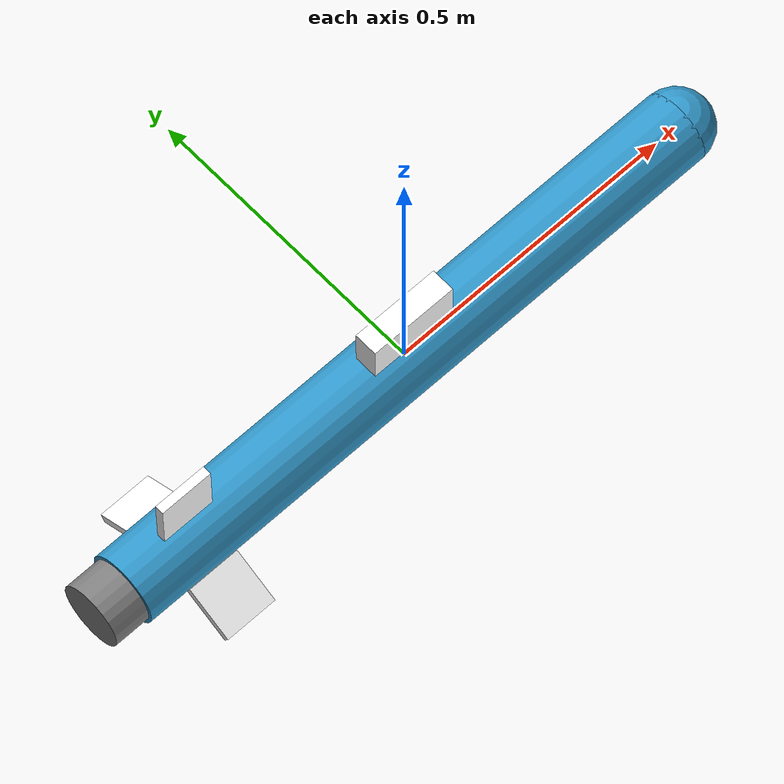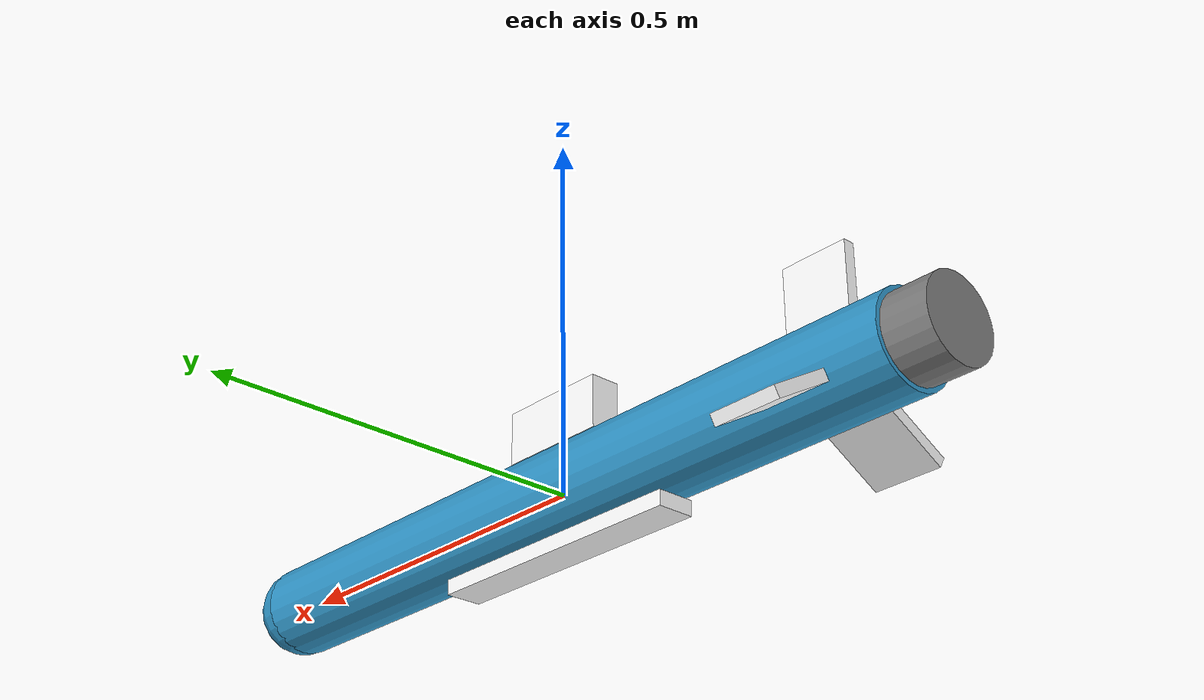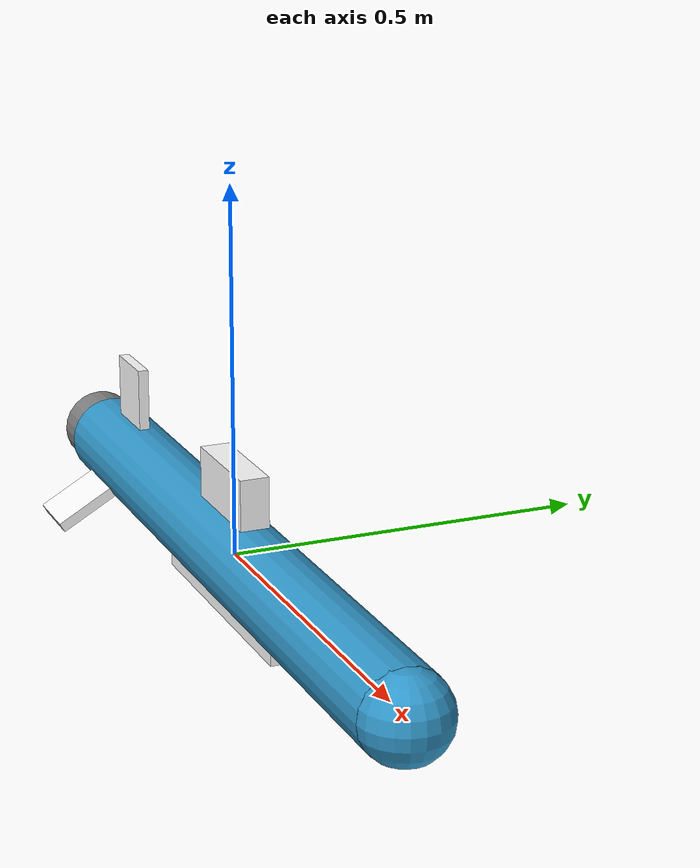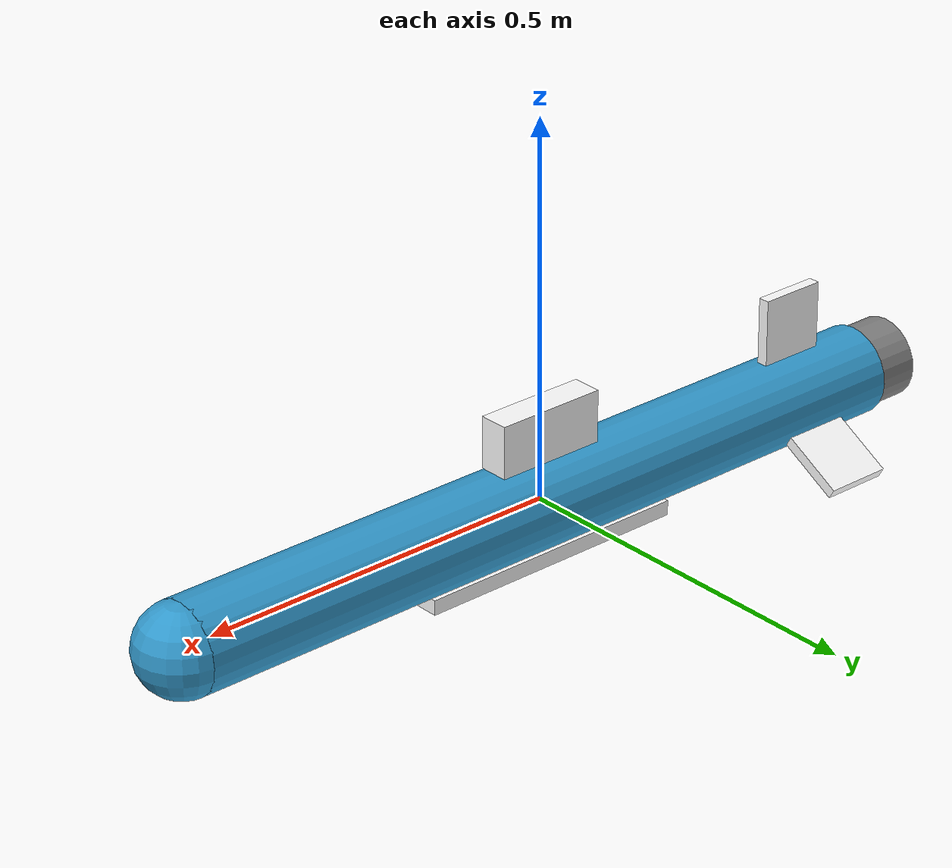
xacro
<?xml version="1.0" ?>
<robot name="couguv" xmlns:xacro="http://ros.org/wiki/xacro">

  <!--
  @file couguv_holoocean.urdf.xacro
  @brief URDF description for the CougUV AUV in HoloOcean.
  @author Nelson Durrant
  @date Jan 2026
  -->

  <!-- AUV constants-->
  <xacro:property name="base_radius" value="0.06"/>
  <xacro:property name="base_length" value="1.2"/>
  <xacro:property name="handle_height" value="0.07"/>
  <xacro:property name="handle_width" value="0.04"/>
  <xacro:property name="handle_length" value="0.15"/>
  <xacro:property name="tray_height" value="0.02"/>
  <xacro:property name="tray_width" value="0.05"/>
  <xacro:property name="tray_length" value="0.38"/>
  <!-- How far back the fins are from the middle -->
  <xacro:property name="fin_offset" value="0.375"/>
  <xacro:property name="fin_height" value="0.09"/>
  <xacro:property name="fin_width" value="0.015"/>
  <xacro:property name="fin_length" value="0.09"/>

  <material name="White">
    <color rgba="1 1 1 1"/>
  </material>

  <material name="Blue">
    <color rgba="0.196 0.6 0.8 1"/>
  </material>

  <material name="Gray">
    <color rgba="0.5 0.5 0.5 1"/>
  </material>

  <!-- Function to generate fins -->
  <xacro:macro name="fin_macro" params="prefix rpy_str">
    <joint name="${prefix}_fin_joint" type="revolute"> <parent link="base_link"/>
      <child link="${prefix}_fin_link"/>
      <origin xyz="${-fin_offset} 0 0" rpy="${rpy_str}"/>
      <axis xyz="0 0 1"/>
      <limit lower="${-pi/4}" upper="${pi/4}" effort="10.0" velocity="1.0"/>
    </joint>

    <link name="${prefix}_fin_link">
      <visual>
        <origin xyz="${-fin_length/2} 0 ${base_radius+fin_height/2}" rpy="0 0 0"/>
        <geometry>
          <box size="${fin_length} ${fin_width} ${fin_height}"/>
        </geometry>
        <material name="White"/>
      </visual>
      </link>
  </xacro:macro>

  <!-- Main AUV body -->
  <link name="base_link">
    <visual>
      <origin xyz="0 0 0" rpy="0 ${pi/2} 0"/>
      <geometry>
        <cylinder radius="${base_radius}" length="${base_length-2*base_radius}"/>
      </geometry>
      <material name="Blue"/>
    </visual>
  </link>

  <!-- Handle -->
  <joint name="handle_joint" type="fixed">
    <parent link="base_link"/>
    <child link="handle_link"/>
    <origin xyz="0 0 ${base_radius}" rpy="0 0 0"/>
  </joint>
  <link name="handle_link">
    <visual>
      <origin xyz="0 0 ${handle_height/2}" rpy="0 0 0"/>
      <geometry>
        <box size="${handle_length} ${handle_width} ${handle_height}"/>
      </geometry>
      <material name="White"/>
    </visual>
  </link>

  <!-- Weight tray -->
  <joint name="tray_joint" type="fixed">
    <parent link="base_link"/>
    <child link="tray_link"/>
    <origin xyz="0 0 -${base_radius}" rpy="0 0 0"/>
  </joint>
  <link name="tray_link">
    <visual>
      <origin xyz="0 0 ${-tray_height/2}" rpy="0 0 0"/>
      <geometry>
        <box size="${tray_length} ${tray_width} ${tray_height}"/>
      </geometry>
      <material name="White"/>
    </visual>
  </link>

  <!-- Front hull -->
  <joint name="hull_joint" type="fixed">
    <parent link="base_link"/>
    <child link="hull_link"/>
    <origin xyz="${(base_length-2*base_radius)/2} 0 0" rpy="0 0 0"/>
  </joint>
  <link name="hull_link">
    <visual>
      <origin xyz="0 0 0" rpy="0 0 0"/>
      <geometry>
        <sphere radius="${base_radius}"/>
      </geometry>
      <material name="Blue"/>
    </visual>
  </link>

  <!-- Thruster -->
  <joint name="thruster_joint" type="fixed">
    <parent link="base_link"/>
    <child link="thruster_link"/>
     <origin xyz="${-(base_length-2*base_radius)/2} 0 0" rpy="0 0 0"/>
  </joint>
  <link name="thruster_link">
    <visual>
      <origin xyz="0 0 0" rpy="0 ${pi/2} 0"/>
      <geometry>
        <cylinder radius="${base_radius*0.9}" length="${2*base_radius}"/>
      </geometry>
      <material name="Gray"/>
    </visual>
  </link>

  <!-- Fins -->
  <xacro:fin_macro prefix="top"   rpy_str="0 0 0"/>
  <xacro:fin_macro prefix="left"  rpy_str="${pi*2/3} 0 0"/>
  <xacro:fin_macro prefix="right" rpy_str="${-pi*2/3} 0 0"/>

  <!-- NOTE: These are exact HoloOcean socket locations as of 2.0.1 -->

  <!-- COM -->
  <joint name="com_joint" type="fixed">
    <parent link="base_link"/>
    <child link="com_link"/>
    <origin xyz="0 0 0" rpy="0 0 0"/>
  </joint>
  <link name="com_link"/>

  <!-- IMUSocket -->
  <joint name="imu_joint" type="fixed">
    <parent link="com_link"/>
    <child link="imu_link"/>
    <origin xyz="0.475 0 -0.035" rpy="${pi} 0 0"/>
  </joint>
  <link name="imu_link"/>

  <!-- DepthSocket -->
  <joint name="depth_joint" type="fixed">
    <parent link="com_link"/>
    <child link="depth_link"/>
    <origin xyz="0.15 0 0.018" rpy="0 0 0"/>
  </joint>
  <link name="depth_link"/>

  <!-- AcousticModemSocket -->
  <joint name="modem_joint" type="fixed">
    <parent link="com_link"/>
    <child link="modem_link"/>
    <origin xyz="0.35 0 -0.086" rpy="0 0 0"/>
  </joint>
  <link name="modem_link"/>

  <!-- DVLSocket -->
  <joint name="dvl_joint" type="fixed">
    <parent link="com_link"/>
    <child link="dvl_link"/>
    <origin xyz="0.475 0 -0.035" rpy="${pi} 0 0"/>
  </joint>
  <link name="dvl_link"/>

  <!-- TODO: Check this when we move to a new HoloOcean version -->
  <joint name="truth_joint" type="fixed">
    <parent link="base_link"/>
    <child link="truth_link"/>
    <origin xyz="-0.1 0 -0.1" rpy="0 0 0"/>
  </joint>
  <link name="truth_link"/>

</robot>
